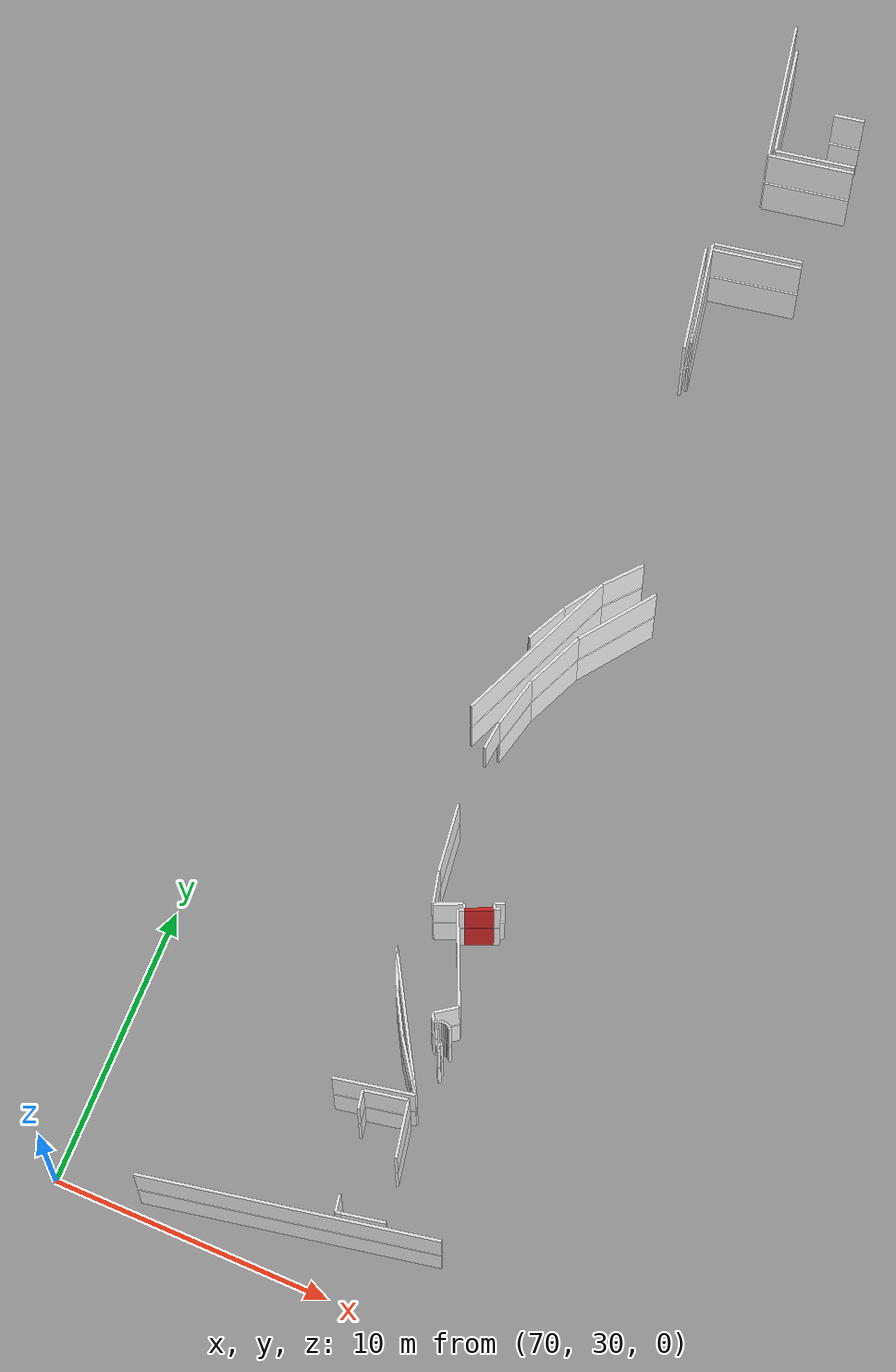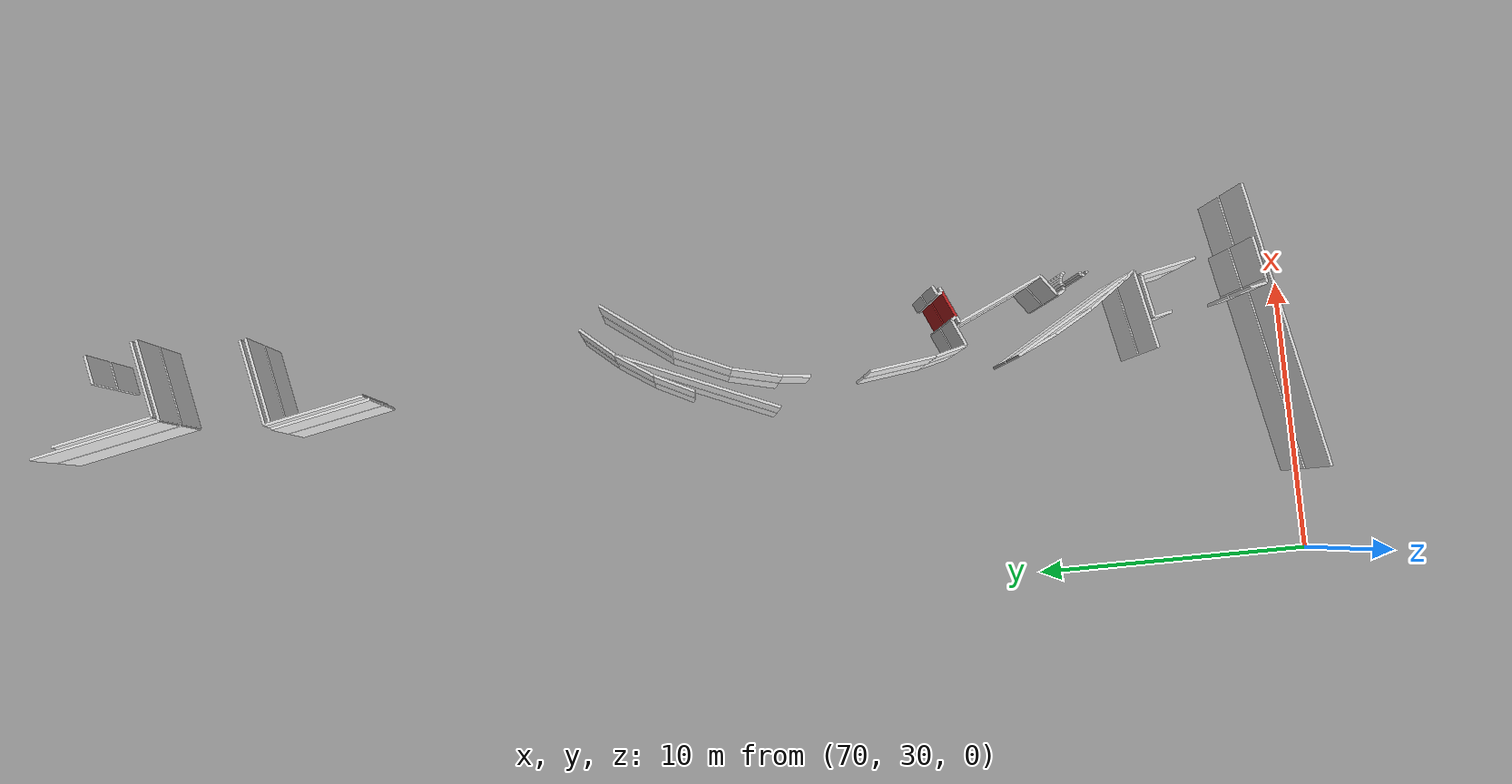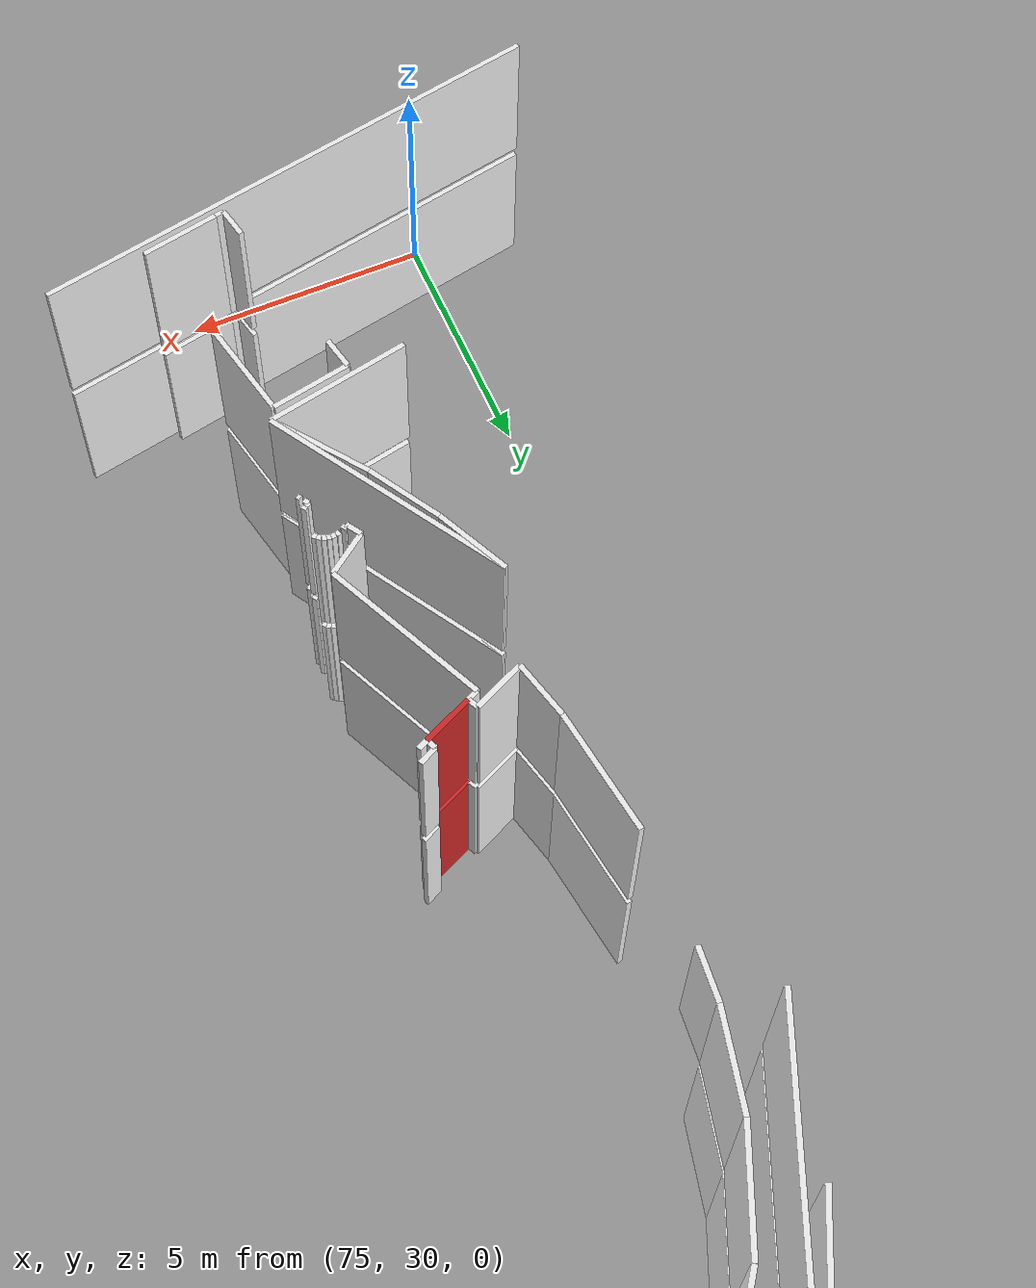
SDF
<sdf version="1.6">
 <world name="default">
  <model name="wall_79.8_43.2_0.0">
   <static>true</static>
   <pose>79.82500000001164 43.18500000005588 1.5 0 0 0.42331075582642225</pose>
   <link name="link">
    <visual name="visual">
     <geometry><box><size>0.9980981916532635 0.1 3</size></box></geometry>
     <material>
      <script><uri>file://media/materials/scripts/gazebo.material</uri><name>Gazebo/Red</name></script>
     </material>
    </visual>
   </link>
  </model>
  <model name="wall_80.4_73.3_0.0">
   <static>true</static>
   <pose>80.43499999999767 73.31000000005588 1.5 0 0 -2.949804511433895</pose>
   <link name="link">
    <visual name="visual">
     <geometry><box><size>1.049237818672231 0.1 3</size></box></geometry>
     <material>
      <script><uri>file://media/materials/scripts/gazebo.material</uri><name>Gazebo/White</name></script>
     </material>
    </visual>
   </link>
  </model>
  <model name="wall_78.2_73.0_0.0">
   <static>true</static>
   <pose>78.22500000000582 73.0250000001397 1.5 0 0 -1.374478352720188</pose>
   <link name="link">
    <visual name="visual">
     <geometry><box><size>3.6399175813241733 0.1 3</size></box></geometry>
     <material>
      <script><uri>file://media/materials/scripts/gazebo.material</uri><name>Gazebo/White</name></script>
     </material>
    </visual>
   </link>
  </model>
  <model name="wall_79.9_71.5_0.0">
   <static>true</static>
   <pose>79.93000000002212 71.50500000012107 1.5 0 0 0.19383178298877288</pose>
   <link name="link">
    <visual name="visual">
     <geometry><box><size>2.7515268488324223 0.1 3</size></box></geometry>
     <material>
      <script><uri>file://media/materials/scripts/gazebo.material</uri><name>Gazebo/White</name></script>
     </material>
    </visual>
   </link>
  </model>
  <model name="wall_79.5_67.5_0.0">
   <static>true</static>
   <pose>79.48500000001513 67.47999999998137 1.5 0 0 -2.9473516575252563</pose>
   <link name="link">
    <visual name="visual">
     <geometry><box><size>3.1084562083905816 0.1 3</size></box></geometry>
     <material>
      <script><uri>file://media/materials/scripts/gazebo.material</uri><name>Gazebo/White</name></script>
     </material>
    </visual>
   </link>
  </model>
  <model name="wall_78.3_65.5_0.0">
   <static>true</static>
   <pose>78.29000000000815 65.52000000001863 1.5 0 0 -1.3745595150025516</pose>
   <link name="link">
    <visual name="visual">
     <geometry><box><size>3.384966765264479 0.1 3</size></box></geometry>
     <material>
      <script><uri>file://media/materials/scripts/gazebo.material</uri><name>Gazebo/White</name></script>
     </material>
    </visual>
   </link>
  </model>
  <model name="wall_79.3_42.9_0.0">
   <static>true</static>
   <pose>79.26999999998952 42.93500000005588 1.5 0 0 0.4228539254915673</pose>
   <link name="link">
    <visual name="visual">
     <geometry><box><size>0.21931712194408015 0.1 3</size></box></geometry>
     <material>
      <script><uri>file://media/materials/scripts/gazebo.material</uri><name>Gazebo/White</name></script>
     </material>
    </visual>
   </link>
  </model>
  <model name="wall_80.4_43.4_0.0">
   <static>true</static>
   <pose>80.37000000002445 43.43000000016764 1.5 0 0 0.4182243299392765</pose>
   <link name="link">
    <visual name="visual">
     <geometry><box><size>0.19697715605979885 0.1 3</size></box></geometry>
     <material>
      <script><uri>file://media/materials/scripts/gazebo.material</uri><name>Gazebo/White</name></script>
     </material>
    </visual>
   </link>
  </model>
  <model name="wall_80.5_38.3_0.0">
   <static>true</static>
   <pose>80.5 38.28999999980442 1.5 0 0 2.158798930342464</pose>
   <link name="link">
    <visual name="visual">
     <geometry><box><size>0.0721110255764384 0.1 3</size></box></geometry>
     <material>
      <script><uri>file://media/materials/scripts/gazebo.material</uri><name>Gazebo/White</name></script>
     </material>
    </visual>
   </link>
  </model>
  <model name="wall_80.4_38.4_0.0">
   <static>true</static>
   <pose>80.41000000000349 38.419999999925494 1.5 0 0 2.2142974351225195</pose>
   <link name="link">
    <visual name="visual">
     <geometry><box><size>0.10000000005820765 0.1 3</size></box></geometry>
     <material>
      <script><uri>file://media/materials/scripts/gazebo.material</uri><name>Gazebo/White</name></script>
     </material>
    </visual>
   </link>
  </model>
  <model name="wall_80.4_38.5_0.0">
   <static>true</static>
   <pose>80.4200000000128 38.47999999998137 1.5 0 0 0.4636476092918444</pose>
   <link name="link">
    <visual name="visual">
     <geometry><box><size>0.0894427191312291 0.1 3</size></box></geometry>
     <material>
      <script><uri>file://media/materials/scripts/gazebo.material</uri><name>Gazebo/White</name></script>
     </material>
    </visual>
   </link>
  </model>
  <model name="wall_80.5_38.5_0.0">
   <static>true</static>
   <pose>80.49000000001979 38.52499999990687 1.5 0 0 0.6947382743836776</pose>
   <link name="link">
    <visual name="visual">
     <geometry><box><size>0.07810249663803426 0.1 3</size></box></geometry>
     <material>
      <script><uri>file://media/materials/scripts/gazebo.material</uri><name>Gazebo/White</name></script>
     </material>
    </visual>
   </link>
  </model>
  <model name="wall_80.5_39.1_0.0">
   <static>true</static>
   <pose>80.53500000000349 39.110000000102445 1.5 0 0 2.2655346024190655</pose>
   <link name="link">
    <visual name="visual">
     <geometry><box><size>0.07810249679454152 0.1 3</size></box></geometry>
     <material>
      <script><uri>file://media/materials/scripts/gazebo.material</uri><name>Gazebo/White</name></script>
     </material>
    </visual>
   </link>
  </model>
  <model name="wall_80.5_39.2_0.0">
   <static>true</static>
   <pose>80.47500000000582 39.16500000003725 1.5 0 0 2.521343169416129</pose>
   <link name="link">
    <visual name="visual">
     <geometry><box><size>0.08602325256784608 0.1 3</size></box></geometry>
     <material>
      <script><uri>file://media/materials/scripts/gazebo.material</uri><name>Gazebo/White</name></script>
     </material>
    </visual>
   </link>
  </model>
  <model name="wall_80.4_39.2_0.0">
   <static>true</static>
   <pose>80.39999999999418 39.205000000074506 1.5 0 0 2.7828219805284427</pose>
   <link name="link">
    <visual name="visual">
     <geometry><box><size>0.08544003755999831 0.1 3</size></box></geometry>
     <material>
      <script><uri>file://media/materials/scripts/gazebo.material</uri><name>Gazebo/White</name></script>
     </material>
    </visual>
   </link>
  </model>
  <model name="wall_80.3_39.2_0.0">
   <static>true</static>
   <pose>80.32000000000698 39.22500000009313 1.5 0 0 3.0172376617295393</pose>
   <link name="link">
    <visual name="visual">
     <geometry><box><size>0.08062257741367569 0.1 3</size></box></geometry>
     <material>
      <script><uri>file://media/materials/scripts/gazebo.material</uri><name>Gazebo/White</name></script>
     </material>
    </visual>
   </link>
  </model>
  <model name="wall_80.2_39.2_0.0">
   <static>true</static>
   <pose>80.23500000001513 39.22999999998137 1.5 0 0 3.141592653589793</pose>
   <link name="link">
    <visual name="visual">
     <geometry><box><size>0.09000000002561137 0.1 3</size></box></geometry>
     <material>
      <script><uri>file://media/materials/scripts/gazebo.material</uri><name>Gazebo/White</name></script>
     </material>
    </visual>
   </link>
  </model>
  <model name="wall_80.1_39.2_0.0">
   <static>true</static>
   <pose>80.14999999999418 39.21999999997206 1.5 0 0 -2.8966139902917303</pose>
   <link name="link">
    <visual name="visual">
     <geometry><box><size>0.08246211253268232 0.1 3</size></box></geometry>
     <material>
      <script><uri>file://media/materials/scripts/gazebo.material</uri><name>Gazebo/White</name></script>
     </material>
    </visual>
   </link>
  </model>
  <model name="wall_80.0_39.1_0.0">
   <static>true</static>
   <pose>80.00499999997555 39.14500000001863 1.5 0 0 -2.521343169416129</pose>
   <link name="link">
    <visual name="visual">
     <geometry><box><size>0.08602325256784608 0.1 3</size></box></geometry>
     <material>
      <script><uri>file://media/materials/scripts/gazebo.material</uri><name>Gazebo/White</name></script>
     </material>
    </visual>
   </link>
  </model>
  <model name="wall_79.9_39.2_0.0">
   <static>true</static>
   <pose>79.875 39.24499999987893 1.5 0 0 2.1327178891317615</pose>
   <link name="link">
    <visual name="visual">
     <geometry><box><size>0.3190611227089686 0.1 3</size></box></geometry>
     <material>
      <script><uri>file://media/materials/scripts/gazebo.material</uri><name>Gazebo/White</name></script>
     </material>
    </visual>
   </link>
  </model>
  <model name="wall_80.2_39.6_0.0">
   <static>true</static>
   <pose>80.15499999999884 39.64500000001863 1.5 0 0 0.6279812908789976</pose>
   <link name="link">
    <visual name="visual">
     <geometry><box><size>0.9021086410927485 0.1 3</size></box></geometry>
     <material>
      <script><uri>file://media/materials/scripts/gazebo.material</uri><name>Gazebo/White</name></script>
     </material>
    </visual>
   </link>
  </model>
  <model name="wall_79.8_41.4_0.0">
   <static>true</static>
   <pose>79.84500000000116 41.4000000001397 1.5 0 0 1.9961589584783586</pose>
   <link name="link">
    <visual name="visual">
     <geometry><box><size>3.2715286946599265 0.1 3</size></box></geometry>
     <material>
      <script><uri>file://media/materials/scripts/gazebo.material</uri><name>Gazebo/White</name></script>
     </material>
    </visual>
   </link>
  </model>
  <model name="wall_78.1_50.1_0.0">
   <static>true</static>
   <pose>78.11000000001513 50.10499999998137 1.5 0 0 1.3352513460828392</pose>
   <link name="link">
    <visual name="visual">
     <geometry><box><size>1.7996944185017383 0.1 3</size></box></geometry>
     <material>
      <script><uri>file://media/materials/scripts/gazebo.material</uri><name>Gazebo/White</name></script>
     </material>
    </visual>
   </link>
  </model>
  <model name="wall_78.8_52.0_0.0">
   <static>true</static>
   <pose>78.75 51.96500000008382 1.5 0 0 1.1591850326473987</pose>
   <link name="link">
    <visual name="visual">
     <geometry><box><size>2.1495348335821967 0.1 3</size></box></geometry>
     <material>
      <script><uri>file://media/materials/scripts/gazebo.material</uri><name>Gazebo/White</name></script>
     </material>
    </visual>
   </link>
  </model>
  <model name="wall_80.1_54.2_0.0">
   <static>true</static>
   <pose>80.07499999998254 54.16500000003725 1.5 0 0 0.9359099816356786</pose>
   <link name="link">
    <visual name="visual">
     <geometry><box><size>3.018111992368174 0.1 3</size></box></geometry>
     <material>
      <script><uri>file://media/materials/scripts/gazebo.material</uri><name>Gazebo/White</name></script>
     </material>
    </visual>
   </link>
  </model>
  <model name="wall_80.4_43.6_0.0">
   <static>true</static>
   <pose>80.36500000001979 43.640000000130385 1.5 0 0 -2.6901395616910224</pose>
   <link name="link">
    <visual name="visual">
     <geometry><box><size>0.3667424164975201 0.1 3</size></box></geometry>
     <material>
      <script><uri>file://media/materials/scripts/gazebo.material</uri><name>Gazebo/White</name></script>
     </material>
    </visual>
   </link>
  </model>
  <model name="wall_80.2_43.5_0.0">
   <static>true</static>
   <pose>80.24000000001979 43.47500000009313 1.5 0 0 -1.1309537437318191</pose>
   <link name="link">
    <visual name="visual">
     <geometry><box><size>0.1878829422200848 0.1 3</size></box></geometry>
     <material>
      <script><uri>file://media/materials/scripts/gazebo.material</uri><name>Gazebo/White</name></script>
     </material>
    </visual>
   </link>
  </model>
  <model name="wall_79.3_43.1_0.0">
   <static>true</static>
   <pose>79.32500000001164 43.07000000006519 1.5 0 0 2.0344439352783015</pose>
   <link name="link">
    <visual name="visual">
     <geometry><box><size>0.20124611811034362 0.1 3</size></box></geometry>
     <material>
      <script><uri>file://media/materials/scripts/gazebo.material</uri><name>Gazebo/White</name></script>
     </material>
    </visual>
   </link>
  </model>
  <model name="wall_78.8_43.0_0.0">
   <static>true</static>
   <pose>78.81000000002678 42.950000000186265 1.5 0 0 -2.7213959400475116</pose>
   <link name="link">
    <visual name="visual">
     <geometry><box><size>1.029563014070432 0.1 3</size></box></geometry>
     <material>
      <script><uri>file://media/materials/scripts/gazebo.material</uri><name>Gazebo/White</name></script>
     </material>
    </visual>
   </link>
  </model>
  <model name="wall_78.2_43.3_0.0">
   <static>true</static>
   <pose>78.2050000000163 43.28500000014901 1.5 0 0 1.8136151661143607</pose>
   <link name="link">
    <visual name="visual">
     <geometry><box><size>1.1229425629502219 0.1 3</size></box></geometry>
     <material>
      <script><uri>file://media/materials/scripts/gazebo.material</uri><name>Gazebo/White</name></script>
     </material>
    </visual>
   </link>
  </model>
  <model name="wall_77.9_45.0_0.0">
   <static>true</static>
   <pose>77.91500000000815 45.0 1.5 0 0 1.7025079936748562</pose>
   <link name="link">
    <visual name="visual">
     <geometry><box><size>2.360444873175644 0.1 3</size></box></geometry>
     <material>
      <script><uri>file://media/materials/scripts/gazebo.material</uri><name>Gazebo/White</name></script>
     </material>
    </visual>
   </link>
  </model>
  <model name="wall_78.0_73.3_0.0">
   <static>true</static>
   <pose>77.97000000000116 73.29999999981374 1.5 0 0 1.769031517003461</pose>
   <link name="link">
    <visual name="visual">
     <geometry><box><size>4.6714879857120994 0.1 3</size></box></geometry>
     <material>
      <script><uri>file://media/materials/scripts/gazebo.material</uri><name>Gazebo/White</name></script>
     </material>
    </visual>
   </link>
  </model>
  <model name="wall_79.4_67.7_0.0">
   <static>true</static>
   <pose>79.44000000000233 67.67999999993481 1.5 0 0 -2.946728733873762</pose>
   <link name="link">
    <visual name="visual">
     <geometry><box><size>3.0986448651528713 0.1 3</size></box></geometry>
     <material>
      <script><uri>file://media/materials/scripts/gazebo.material</uri><name>Gazebo/White</name></script>
     </material>
    </visual>
   </link>
  </model>
  <model name="wall_79.9_71.3_0.0">
   <static>true</static>
   <pose>79.875 71.2949999999255 1.5 0 0 0.1947324503984289</pose>
   <link name="link">
    <visual name="visual">
     <geometry><box><size>2.9456747954281193 0.1 3</size></box></geometry>
     <material>
      <script><uri>file://media/materials/scripts/gazebo.material</uri><name>Gazebo/White</name></script>
     </material>
    </visual>
   </link>
  </model>
  <model name="wall_79.6_32.1_0.0">
   <static>true</static>
   <pose>79.61500000001979 32.05499999993481 1.5 0 0 -2.966920455733987</pose>
   <link name="link">
    <visual name="visual">
     <geometry><box><size>0.1726267649646635 0.1 3</size></box></geometry>
     <material>
      <script><uri>file://media/materials/scripts/gazebo.material</uri><name>Gazebo/White</name></script>
     </material>
    </visual>
   </link>
  </model>
  <model name="wall_79.5_32.3_0.0">
   <static>true</static>
   <pose>79.47000000000116 32.34000000008382 1.5 0 0 1.7681918867007462</pose>
   <link name="link">
    <visual name="visual">
     <geometry><box><size>0.6118823417329601 0.1 3</size></box></geometry>
     <material>
      <script><uri>file://media/materials/scripts/gazebo.material</uri><name>Gazebo/White</name></script>
     </material>
    </visual>
   </link>
  </model>
  <model name="wall_78.8_35.8_0.0">
   <static>true</static>
   <pose>78.77500000002328 35.78500000014901 1.5 0 0 1.7742893720946593</pose>
   <link name="link">
    <visual name="visual">
     <geometry><box><size>0.6432728813345039 0.1 3</size></box></geometry>
     <material>
      <script><uri>file://media/materials/scripts/gazebo.material</uri><name>Gazebo/White</name></script>
     </material>
    </visual>
   </link>
  </model>
  <model name="wall_79.5_36.2_0.0">
   <static>true</static>
   <pose>79.47000000000116 36.25 1.5 0 0 0.194863919575871</pose>
   <link name="link">
    <visual name="visual">
     <geometry><box><size>1.549322432474246 0.1 3</size></box></geometry>
     <material>
      <script><uri>file://media/materials/scripts/gazebo.material</uri><name>Gazebo/White</name></script>
     </material>
    </visual>
   </link>
  </model>
  <model name="wall_80.4_35.4_0.0">
   <static>true</static>
   <pose>80.42999999999302 35.425000000046566 1.5 0 0 -1.368474698376931</pose>
   <link name="link">
    <visual name="visual">
     <geometry><box><size>1.9906029234704192 0.1 3</size></box></geometry>
     <material>
      <script><uri>file://media/materials/scripts/gazebo.material</uri><name>Gazebo/White</name></script>
     </material>
    </visual>
   </link>
  </model>
  <model name="wall_80.4_32.2_0.0">
   <static>true</static>
   <pose>80.44500000000698 32.21999999997206 1.5 0 0 -2.942906771693948</pose>
   <link name="link">
    <visual name="visual">
     <geometry><box><size>1.5199013126318053 0.1 3</size></box></geometry>
     <material>
      <script><uri>file://media/materials/scripts/gazebo.material</uri><name>Gazebo/White</name></script>
     </material>
    </visual>
   </link>
  </model>
  <model name="wall_78.1_65.4_0.0">
   <static>true</static>
   <pose>78.11999999999534 65.38500000000931 1.5 0 0 -1.3739487121216474</pose>
   <link name="link">
    <visual name="visual">
     <geometry><box><size>3.5791200038046584 0.1 3</size></box></geometry>
     <material>
      <script><uri>file://media/materials/scripts/gazebo.material</uri><name>Gazebo/White</name></script>
     </material>
    </visual>
   </link>
  </model>
  <model name="wall_79.7_55.6_0.0">
   <static>true</static>
   <pose>79.69000000000233 55.57000000006519 1.5 0 0 -2.282255452669402</pose>
   <link name="link">
    <visual name="visual">
     <geometry><box><size>1.5315351772862982 0.1 3</size></box></geometry>
     <material>
      <script><uri>file://media/materials/scripts/gazebo.material</uri><name>Gazebo/White</name></script>
     </material>
    </visual>
   </link>
  </model>
  <model name="wall_78.8_54.4_0.0">
   <static>true</static>
   <pose>78.76500000001397 54.35000000009313 1.5 0 0 -2.1569938780447484</pose>
   <link name="link">
    <visual name="visual">
     <geometry><box><size>1.5365220469059306 0.1 3</size></box></geometry>
     <material>
      <script><uri>file://media/materials/scripts/gazebo.material</uri><name>Gazebo/White</name></script>
     </material>
    </visual>
   </link>
  </model>
  <model name="wall_78.0_53.0_0.0">
   <static>true</static>
   <pose>78.0 53.02000000001863 1.5 0 0 -2.0286300478758363</pose>
   <link name="link">
    <visual name="visual">
     <geometry><box><size>1.538440769012967 0.1 3</size></box></geometry>
     <material>
      <script><uri>file://media/materials/scripts/gazebo.material</uri><name>Gazebo/White</name></script>
     </material>
    </visual>
   </link>
  </model>
  <model name="wall_78.1_40.3_0.0">
   <static>true</static>
   <pose>78.11499999999069 40.27499999990687 1.5 0 0 -1.1397780825490453</pose>
   <link name="link">
    <visual name="visual">
     <geometry><box><size>1.507912464406368 0.1 3</size></box></geometry>
     <material>
      <script><uri>file://media/materials/scripts/gazebo.material</uri><name>Gazebo/White</name></script>
     </material>
    </visual>
   </link>
  </model>
  <model name="wall_78.8_38.9_0.0">
   <static>true</static>
   <pose>78.80999999999767 38.92999999993481 1.5 0 0 -1.048392895018153</pose>
   <link name="link">
    <visual name="visual">
     <geometry><box><size>1.5231546210321498 0.1 3</size></box></geometry>
     <material>
      <script><uri>file://media/materials/scripts/gazebo.material</uri><name>Gazebo/White</name></script>
     </material>
    </visual>
   </link>
  </model>
  <model name="wall_79.6_37.7_0.0">
   <static>true</static>
   <pose>79.63000000000466 37.65500000002794 1.5 0 0 -0.9497782014457066</pose>
   <link name="link">
    <visual name="visual">
     <geometry><box><size>1.5123822268072231 0.1 3</size></box></geometry>
     <material>
      <script><uri>file://media/materials/scripts/gazebo.material</uri><name>Gazebo/White</name></script>
     </material>
    </visual>
   </link>
  </model>
  <model name="wall_80.2_36.8_0.0">
   <static>true</static>
   <pose>80.22500000000582 36.84000000008382 1.5 0 0 -0.911486258352942</pose>
   <link name="link">
    <visual name="visual">
     <geometry><box><size>0.5060632370801604 0.1 3</size></box></geometry>
     <material>
      <script><uri>file://media/materials/scripts/gazebo.material</uri><name>Gazebo/White</name></script>
     </material>
    </visual>
   </link>
  </model>
  <model name="wall_79.0_36.4_0.0">
   <static>true</static>
   <pose>79.0 36.360000000102445 1.5 0 0 -2.9414115856051164</pose>
   <link name="link">
    <visual name="visual">
     <geometry><box><size>2.816238626273348 0.1 3</size></box></geometry>
     <material>
      <script><uri>file://media/materials/scripts/gazebo.material</uri><name>Gazebo/White</name></script>
     </material>
    </visual>
   </link>
  </model>
  <model name="wall_78.0_31.5_0.0">
   <static>true</static>
   <pose>78.02499999999418 31.540000000037253 1.5 0 0 0.19417892004540582</pose>
   <link name="link">
    <visual name="visual">
     <geometry><box><size>10.364791363055433 0.1 3</size></box></geometry>
     <material>
      <script><uri>file://media/materials/scripts/gazebo.material</uri><name>Gazebo/White</name></script>
     </material>
    </visual>
   </link>
  </model>
  <model name="wall_79.1_38.8_0.0">
   <static>true</static>
   <pose>79.08999999999651 38.800000000046566 1.5 0 0 2.10917084016099</pose>
   <link name="link">
    <visual name="visual">
     <geometry><box><size>5.031779009320233 0.1 3</size></box></geometry>
     <material>
      <script><uri>file://media/materials/scripts/gazebo.material</uri><name>Gazebo/White</name></script>
     </material>
    </visual>
   </link>
  </model>
  <model name="wall_78.0_52.2_0.0">
   <static>true</static>
   <pose>78.00500000000466 52.19000000017695 1.5 0 0 1.1704391671759413</pose>
   <link name="link">
    <visual name="visual">
     <geometry><box><size>6.080863425618191 0.1 3</size></box></geometry>
     <material>
      <script><uri>file://media/materials/scripts/gazebo.material</uri><name>Gazebo/White</name></script>
     </material>
    </visual>
   </link>
  </model>
  <model name="wall_78.3_65.6_0.0">
   <static>true</static>
   <pose>78.26999999998952 65.61999999987893 1.5 0 0 1.7670989909072092</pose>
   <link name="link">
    <visual name="visual">
     <geometry><box><size>3.5889274163944065 0.1 3</size></box></geometry>
     <material>
      <script><uri>file://media/materials/scripts/gazebo.material</uri><name>Gazebo/White</name></script>
     </material>
    </visual>
   </link>
  </model>
  <model name="wall_79.8_43.2_3.2">
   <static>true</static>
   <pose>79.82500000001164 43.18500000005588 4.7 0 0 0.42331075582642225</pose>
   <link name="link">
    <visual name="visual">
     <geometry><box><size>0.9980981916532635 0.1 3</size></box></geometry>
     <material>
      <script><uri>file://media/materials/scripts/gazebo.material</uri><name>Gazebo/Red</name></script>
     </material>
    </visual>
   </link>
  </model>
  <model name="wall_80.4_73.3_3.2">
   <static>true</static>
   <pose>80.43499999999767 73.31000000005588 4.7 0 0 -2.949804511433895</pose>
   <link name="link">
    <visual name="visual">
     <geometry><box><size>1.049237818672231 0.1 3</size></box></geometry>
     <material>
      <script><uri>file://media/materials/scripts/gazebo.material</uri><name>Gazebo/White</name></script>
     </material>
    </visual>
   </link>
  </model>
  <model name="wall_78.2_73.0_3.2">
   <static>true</static>
   <pose>78.22500000000582 73.0250000001397 4.7 0 0 -1.374478352720188</pose>
   <link name="link">
    <visual name="visual">
     <geometry><box><size>3.6399175813241733 0.1 3</size></box></geometry>
     <material>
      <script><uri>file://media/materials/scripts/gazebo.material</uri><name>Gazebo/White</name></script>
     </material>
    </visual>
   </link>
  </model>
  <model name="wall_79.9_71.5_3.2">
   <static>true</static>
   <pose>79.93000000002212 71.50500000012107 4.7 0 0 0.19383178298877288</pose>
   <link name="link">
    <visual name="visual">
     <geometry><box><size>2.7515268488324223 0.1 3</size></box></geometry>
     <material>
      <script><uri>file://media/materials/scripts/gazebo.material</uri><name>Gazebo/White</name></script>
     </material>
    </visual>
   </link>
  </model>
  <model name="wall_79.5_67.5_3.2">
   <static>true</static>
   <pose>79.48500000001513 67.47999999998137 4.7 0 0 -2.9473516575252563</pose>
   <link name="link">
    <visual name="visual">
     <geometry><box><size>3.1084562083905816 0.1 3</size></box></geometry>
     <material>
      <script><uri>file://media/materials/scripts/gazebo.material</uri><name>Gazebo/White</name></script>
     </material>
    </visual>
   </link>
  </model>
  <model name="wall_78.3_65.5_3.2">
   <static>true</static>
   <pose>78.29000000000815 65.52000000001863 4.7 0 0 -1.3745595150025516</pose>
   <link name="link">
    <visual name="visual">
     <geometry><box><size>3.384966765264479 0.1 3</size></box></geometry>
     <material>
      <script><uri>file://media/materials/scripts/gazebo.material</uri><name>Gazebo/White</name></script>
     </material>
    </visual>
   </link>
  </model>
  <model name="wall_79.3_42.9_3.2">
   <static>true</static>
   <pose>79.26999999998952 42.93500000005588 4.7 0 0 0.4228539254915673</pose>
   <link name="link">
    <visual name="visual">
     <geometry><box><size>0.21931712194408015 0.1 3</size></box></geometry>
     <material>
      <script><uri>file://media/materials/scripts/gazebo.material</uri><name>Gazebo/White</name></script>
     </material>
    </visual>
   </link>
  </model>
  <model name="wall_80.4_43.4_3.2">
   <static>true</static>
   <pose>80.37000000002445 43.43000000016764 4.7 0 0 0.4182243299392765</pose>
   <link name="link">
    <visual name="visual">
     <geometry><box><size>0.19697715605979885 0.1 3</size></box></geometry>
     <material>
      <script><uri>file://media/materials/scripts/gazebo.material</uri><name>Gazebo/White</name></script>
     </material>
    </visual>
   </link>
  </model>
  <model name="wall_80.5_38.3_3.2">
   <static>true</static>
   <pose>80.5 38.28999999980442 4.7 0 0 2.158798930342464</pose>
   <link name="link">
    <visual name="visual">
     <geometry><box><size>0.0721110255764384 0.1 3</size></box></geometry>
     <material>
      <script><uri>file://media/materials/scripts/gazebo.material</uri><name>Gazebo/White</name></script>
     </material>
    </visual>
   </link>
  </model>
  <model name="wall_80.4_38.4_3.2">
   <static>true</static>
   <pose>80.41000000000349 38.419999999925494 4.7 0 0 2.2142974351225195</pose>
   <link name="link">
    <visual name="visual">
     <geometry><box><size>0.10000000005820765 0.1 3</size></box></geometry>
     <material>
      <script><uri>file://media/materials/scripts/gazebo.material</uri><name>Gazebo/White</name></script>
     </material>
    </visual>
   </link>
  </model>
  <model name="wall_80.4_38.5_3.2">
   <static>true</static>
   <pose>80.4200000000128 38.47999999998137 4.7 0 0 0.4636476092918444</pose>
   <link name="link">
    <visual name="visual">
     <geometry><box><size>0.0894427191312291 0.1 3</size></box></geometry>
     <material>
      <script><uri>file://media/materials/scripts/gazebo.material</uri><name>Gazebo/White</name></script>
     </material>
    </visual>
   </link>
  </model>
  <model name="wall_80.5_38.5_3.2">
   <static>true</static>
   <pose>80.49000000001979 38.52499999990687 4.7 0 0 0.6947382743836776</pose>
   <link name="link">
    <visual name="visual">
     <geometry><box><size>0.07810249663803426 0.1 3</size></box></geometry>
     <material>
      <script><uri>file://media/materials/scripts/gazebo.material</uri><name>Gazebo/White</name></script>
     </material>
    </visual>
   </link>
  </model>
  <model name="wall_80.5_39.1_3.2">
   <static>true</static>
   <pose>80.53500000000349 39.110000000102445 4.7 0 0 2.2655346024190655</pose>
   <link name="link">
    <visual name="visual">
     <geometry><box><size>0.07810249679454152 0.1 3</size></box></geometry>
     <material>
      <script><uri>file://media/materials/scripts/gazebo.material</uri><name>Gazebo/White</name></script>
     </material>
    </visual>
   </link>
  </model>
  <model name="wall_80.5_39.2_3.2">
   <static>true</static>
   <pose>80.47500000000582 39.16500000003725 4.7 0 0 2.521343169416129</pose>
   <link name="link">
    <visual name="visual">
     <geometry><box><size>0.08602325256784608 0.1 3</size></box></geometry>
     <material>
      <script><uri>file://media/materials/scripts/gazebo.material</uri><name>Gazebo/White</name></script>
     </material>
    </visual>
   </link>
  </model>
  <model name="wall_80.4_39.2_3.2">
   <static>true</static>
   <pose>80.39999999999418 39.205000000074506 4.7 0 0 2.7828219805284427</pose>
   <link name="link">
    <visual name="visual">
     <geometry><box><size>0.08544003755999831 0.1 3</size></box></geometry>
     <material>
      <script><uri>file://media/materials/scripts/gazebo.material</uri><name>Gazebo/White</name></script>
     </material>
    </visual>
   </link>
  </model>
  <model name="wall_80.3_39.2_3.2">
   <static>true</static>
   <pose>80.32000000000698 39.22500000009313 4.7 0 0 3.0172376617295393</pose>
   <link name="link">
    <visual name="visual">
     <geometry><box><size>0.08062257741367569 0.1 3</size></box></geometry>
     <material>
      <script><uri>file://media/materials/scripts/gazebo.material</uri><name>Gazebo/White</name></script>
     </material>
    </visual>
   </link>
  </model>
  <model name="wall_80.2_39.2_3.2">
   <static>true</static>
   <pose>80.23500000001513 39.22999999998137 4.7 0 0 3.141592653589793</pose>
   <link name="link">
    <visual name="visual">
     <geometry><box><size>0.09000000002561137 0.1 3</size></box></geometry>
     <material>
      <script><uri>file://media/materials/scripts/gazebo.material</uri><name>Gazebo/White</name></script>
     </material>
    </visual>
   </link>
  </model>
  <model name="wall_80.1_39.2_3.2">
   <static>true</static>
   <pose>80.14999999999418 39.21999999997206 4.7 0 0 -2.8966139902917303</pose>
   <link name="link">
    <visual name="visual">
     <geometry><box><size>0.08246211253268232 0.1 3</size></box></geometry>
     <material>
      <script><uri>file://media/materials/scripts/gazebo.material</uri><name>Gazebo/White</name></script>
     </material>
    </visual>
   </link>
  </model>
  <model name="wall_80.0_39.1_3.2">
   <static>true</static>
   <pose>80.00499999997555 39.14500000001863 4.7 0 0 -2.521343169416129</pose>
   <link name="link">
    <visual name="visual">
     <geometry><box><size>0.08602325256784608 0.1 3</size></box></geometry>
     <material>
      <script><uri>file://media/materials/scripts/gazebo.material</uri><name>Gazebo/White</name></script>
     </material>
    </visual>
   </link>
  </model>
  <model name="wall_79.9_39.2_3.2">
   <static>true</static>
   <pose>79.875 39.24499999987893 4.7 0 0 2.1327178891317615</pose>
   <link name="link">
    <visual name="visual">
     <geometry><box><size>0.3190611227089686 0.1 3</size></box></geometry>
     <material>
      <script><uri>file://media/materials/scripts/gazebo.material</uri><name>Gazebo/White</name></script>
     </material>
    </visual>
   </link>
  </model>
  <model name="wall_80.2_39.6_3.2">
   <static>true</static>
   <pose>80.15499999999884 39.64500000001863 4.7 0 0 0.6279812908789976</pose>
   <link name="link">
    <visual name="visual">
     <geometry><box><size>0.9021086410927485 0.1 3</size></box></geometry>
     <material>
      <script><uri>file://media/materials/scripts/gazebo.material</uri><name>Gazebo/White</name></script>
     </material>
    </visual>
   </link>
  </model>
  <model name="wall_79.8_41.4_3.2">
   <static>true</static>
   <pose>79.84500000000116 41.4000000001397 4.7 0 0 1.9961589584783586</pose>
   <link name="link">
    <visual name="visual">
     <geometry><box><size>3.2715286946599265 0.1 3</size></box></geometry>
     <material>
      <script><uri>file://media/materials/scripts/gazebo.material</uri><name>Gazebo/White</name></script>
     </material>
    </visual>
   </link>
  </model>
  <model name="wall_78.1_50.1_3.2">
   <static>true</static>
   <pose>78.11000000001513 50.10499999998137 4.7 0 0 1.3352513460828392</pose>
   <link name="link">
    <visual name="visual">
     <geometry><box><size>1.7996944185017383 0.1 3</size></box></geometry>
     <material>
      <script><uri>file://media/materials/scripts/gazebo.material</uri><name>Gazebo/White</name></script>
     </material>
    </visual>
   </link>
  </model>
  <model name="wall_78.8_52.0_3.2">
   <static>true</static>
   <pose>78.75 51.96500000008382 4.7 0 0 1.1591850326473987</pose>
   <link name="link">
    <visual name="visual">
     <geometry><box><size>2.1495348335821967 0.1 3</size></box></geometry>
     <material>
      <script><uri>file://media/materials/scripts/gazebo.material</uri><name>Gazebo/White</name></script>
     </material>
    </visual>
   </link>
  </model>
  <model name="wall_80.1_54.2_3.2">
   <static>true</static>
   <pose>80.07499999998254 54.16500000003725 4.7 0 0 0.9359099816356786</pose>
   <link name="link">
    <visual name="visual">
     <geometry><box><size>3.018111992368174 0.1 3</size></box></geometry>
     <material>
      <script><uri>file://media/materials/scripts/gazebo.material</uri><name>Gazebo/White</name></script>
     </material>
    </visual>
   </link>
  </model>
  <model name="wall_80.4_43.6_3.2">
   <static>true</static>
   <pose>80.36500000001979 43.640000000130385 4.7 0 0 -2.6901395616910224</pose>
   <link name="link">
    <visual name="visual">
     <geometry><box><size>0.3667424164975201 0.1 3</size></box></geometry>
     <material>
      <script><uri>file://media/materials/scripts/gazebo.material</uri><name>Gazebo/White</name></script>
     </material>
    </visual>
   </link>
  </model>
  <model name="wall_80.2_43.5_3.2">
   <static>true</static>
   <pose>80.24000000001979 43.47500000009313 4.7 0 0 -1.1309537437318191</pose>
   <link name="link">
    <visual name="visual">
     <geometry><box><size>0.1878829422200848 0.1 3</size></box></geometry>
     <material>
      <script><uri>file://media/materials/scripts/gazebo.material</uri><name>Gazebo/White</name></script>
     </material>
    </visual>
   </link>
  </model>
  <model name="wall_79.3_43.1_3.2">
   <static>true</static>
   <pose>79.32500000001164 43.07000000006519 4.7 0 0 2.0344439352783015</pose>
   <link name="link">
    <visual name="visual">
     <geometry><box><size>0.20124611811034362 0.1 3</size></box></geometry>
     <material>
      <script><uri>file://media/materials/scripts/gazebo.material</uri><name>Gazebo/White</name></script>
     </material>
    </visual>
   </link>
  </model>
  <model name="wall_78.8_43.0_3.2">
   <static>true</static>
   <pose>78.81000000002678 42.950000000186265 4.7 0 0 -2.7213959400475116</pose>
   <link name="link">
    <visual name="visual">
     <geometry><box><size>1.029563014070432 0.1 3</size></box></geometry>
     <material>
      <script><uri>file://media/materials/scripts/gazebo.material</uri><name>Gazebo/White</name></script>
     </material>
    </visual>
   </link>
  </model>
  <model name="wall_78.2_43.3_3.2">
   <static>true</static>
   <pose>78.2050000000163 43.28500000014901 4.7 0 0 1.8136151661143607</pose>
   <link name="link">
    <visual name="visual">
     <geometry><box><size>1.1229425629502219 0.1 3</size></box></geometry>
     <material>
      <script><uri>file://media/materials/scripts/gazebo.material</uri><name>Gazebo/White</name></script>
     </material>
    </visual>
   </link>
  </model>
  <model name="wall_77.9_45.0_3.2">
   <static>true</static>
   <pose>77.91500000000815 45.0 4.7 0 0 1.7025079936748562</pose>
   <link name="link">
    <visual name="visual">
     <geometry><box><size>2.360444873175644 0.1 3</size></box></geometry>
     <material>
      <script><uri>file://media/materials/scripts/gazebo.material</uri><name>Gazebo/White</name></script>
     </material>
    </visual>
   </link>
  </model>
  <model name="wall_77.9_48.7_3.2">
   <static>true</static>
   <pose>77.85000000000582 48.74499999987893 4.7 0 0 1.4680664593621482</pose>
   <link name="link">
    <visual name="visual">
     <geometry><box><size>0.9751410156507998 0.1 3</size></box></geometry>
     <material>
      <script><uri>file://media/materials/scripts/gazebo.material</uri><name>Gazebo/White</name></script>
     </material>
    </visual>
   </link>
  </model>
  <model name="wall_78.0_73.3_3.2">
   <static>true</static>
   <pose>77.97000000000116 73.29999999981374 4.7 0 0 1.769031517003461</pose>
   <link name="link">
    <visual name="visual">
     <geometry><box><size>4.6714879857120994 0.1 3</size></box></geometry>
     <material>
      <script><uri>file://media/materials/scripts/gazebo.material</uri><name>Gazebo/White</name></script>
     </material>
    </visual>
   </link>
  </model>
  <model name="wall_79.4_67.7_3.2">
   <static>true</static>
   <pose>79.44000000000233 67.67999999993481 4.7 0 0 -2.946728733873762</pose>
   <link name="link">
    <visual name="visual">
     <geometry><box><size>3.0986448651528713 0.1 3</size></box></geometry>
     <material>
      <script><uri>file://media/materials/scripts/gazebo.material</uri><name>Gazebo/White</name></script>
     </material>
    </visual>
   </link>
  </model>
  <model name="wall_79.9_71.3_3.2">
   <static>true</static>
   <pose>79.875 71.2949999999255 4.7 0 0 0.1947324503984289</pose>
   <link name="link">
    <visual name="visual">
     <geometry><box><size>2.9456747954281193 0.1 3</size></box></geometry>
     <material>
      <script><uri>file://media/materials/scripts/gazebo.material</uri><name>Gazebo/White</name></script>
     </material>
    </visual>
   </link>
  </model>
  <model name="wall_79.6_32.1_3.2">
   <static>true</static>
   <pose>79.61500000001979 32.05499999993481 4.7 0 0 -2.966920455733987</pose>
   <link name="link">
    <visual name="visual">
     <geometry><box><size>0.1726267649646635 0.1 3</size></box></geometry>
     <material>
      <script><uri>file://media/materials/scripts/gazebo.material</uri><name>Gazebo/White</name></script>
     </material>
    </visual>
   </link>
  </model>
  <model name="wall_79.5_32.3_3.2">
   <static>true</static>
   <pose>79.47000000000116 32.34000000008382 4.7 0 0 1.7681918867007462</pose>
   <link name="link">
    <visual name="visual">
     <geometry><box><size>0.6118823417329601 0.1 3</size></box></geometry>
     <material>
      <script><uri>file://media/materials/scripts/gazebo.material</uri><name>Gazebo/White</name></script>
     </material>
    </visual>
   </link>
  </model>
  <model name="wall_78.8_35.8_3.2">
   <static>true</static>
   <pose>78.77500000002328 35.78500000014901 4.7 0 0 1.7742893720946593</pose>
   <link name="link">
    <visual name="visual">
     <geometry><box><size>0.6432728813345039 0.1 3</size></box></geometry>
     <material>
      <script><uri>file://media/materials/scripts/gazebo.material</uri><name>Gazebo/White</name></script>
     </material>
    </visual>
   </link>
  </model>
  <model name="wall_79.5_36.2_3.2">
   <static>true</static>
   <pose>79.47000000000116 36.25 4.7 0 0 0.194863919575871</pose>
   <link name="link">
    <visual name="visual">
     <geometry><box><size>1.549322432474246 0.1 3</size></box></geometry>
     <material>
      <script><uri>file://media/materials/scripts/gazebo.material</uri><name>Gazebo/White</name></script>
     </material>
    </visual>
   </link>
  </model>
  <model name="wall_80.4_35.4_3.2">
   <static>true</static>
   <pose>80.42999999999302 35.425000000046566 4.7 0 0 -1.368474698376931</pose>
   <link name="link">
    <visual name="visual">
     <geometry><box><size>1.9906029234704192 0.1 3</size></box></geometry>
     <material>
      <script><uri>file://media/materials/scripts/gazebo.material</uri><name>Gazebo/White</name></script>
     </material>
    </visual>
   </link>
  </model>
  <model name="wall_80.4_32.2_3.2">
   <static>true</static>
   <pose>80.44500000000698 32.21999999997206 4.7 0 0 -2.942906771693948</pose>
   <link name="link">
    <visual name="visual">
     <geometry><box><size>1.5199013126318053 0.1 3</size></box></geometry>
     <material>
      <script><uri>file://media/materials/scripts/gazebo.material</uri><name>Gazebo/White</name></script>
     </material>
    </visual>
   </link>
  </model>
  <model name="wall_78.1_65.4_3.2">
   <static>true</static>
   <pose>78.11999999999534 65.38500000000931 4.7 0 0 -1.3739487121216474</pose>
   <link name="link">
    <visual name="visual">
     <geometry><box><size>3.5791200038046584 0.1 3</size></box></geometry>
     <material>
      <script><uri>file://media/materials/scripts/gazebo.material</uri><name>Gazebo/White</name></script>
     </material>
    </visual>
   </link>
  </model>
  <model name="wall_79.7_55.6_3.2">
   <static>true</static>
   <pose>79.69000000000233 55.57000000006519 4.7 0 0 -2.282255452669402</pose>
   <link name="link">
    <visual name="visual">
     <geometry><box><size>1.5315351772862982 0.1 3</size></box></geometry>
     <material>
      <script><uri>file://media/materials/scripts/gazebo.material</uri><name>Gazebo/White</name></script>
     </material>
    </visual>
   </link>
  </model>
  <model name="wall_78.8_54.4_3.2">
   <static>true</static>
   <pose>78.76500000001397 54.35000000009313 4.7 0 0 -2.1569938780447484</pose>
   <link name="link">
    <visual name="visual">
     <geometry><box><size>1.5365220469059306 0.1 3</size></box></geometry>
     <material>
      <script><uri>file://media/materials/scripts/gazebo.material</uri><name>Gazebo/White</name></script>
     </material>
    </visual>
   </link>
  </model>
  <model name="wall_78.0_53.0_3.2">
   <static>true</static>
   <pose>78.0 53.02000000001863 4.7 0 0 -2.0286300478758363</pose>
   <link name="link">
    <visual name="visual">
     <geometry><box><size>1.538440769012967 0.1 3</size></box></geometry>
     <material>
      <script><uri>file://media/materials/scripts/gazebo.material</uri><name>Gazebo/White</name></script>
     </material>
    </visual>
   </link>
  </model>
  <model name="wall_78.1_40.3_3.2">
   <static>true</static>
   <pose>78.11499999999069 40.27499999990687 4.7 0 0 -1.1397780825490453</pose>
   <link name="link">
    <visual name="visual">
     <geometry><box><size>1.507912464406368 0.1 3</size></box></geometry>
     <material>
      <script><uri>file://media/materials/scripts/gazebo.material</uri><name>Gazebo/White</name></script>
     </material>
    </visual>
   </link>
  </model>
  <model name="wall_78.8_38.9_3.2">
   <static>true</static>
   <pose>78.80999999999767 38.92999999993481 4.7 0 0 -1.048392895018153</pose>
   <link name="link">
    <visual name="visual">
     <geometry><box><size>1.5231546210321498 0.1 3</size></box></geometry>
     <material>
      <script><uri>file://media/materials/scripts/gazebo.material</uri><name>Gazebo/White</name></script>
     </material>
    </visual>
   </link>
  </model>
  <model name="wall_79.6_37.7_3.2">
   <static>true</static>
   <pose>79.63000000000466 37.65500000002794 4.7 0 0 -0.9497782014457066</pose>
   <link name="link">
    <visual name="visual">
     <geometry><box><size>1.5123822268072231 0.1 3</size></box></geometry>
     <material>
      <script><uri>file://media/materials/scripts/gazebo.material</uri><name>Gazebo/White</name></script>
     </material>
    </visual>
   </link>
  </model>
  <model name="wall_80.2_36.8_3.2">
   <static>true</static>
   <pose>80.22500000000582 36.84000000008382 4.7 0 0 -0.911486258352942</pose>
   <link name="link">
    <visual name="visual">
     <geometry><box><size>0.5060632370801604 0.1 3</size></box></geometry>
     <material>
      <script><uri>file://media/materials/scripts/gazebo.material</uri><name>Gazebo/White</name></script>
     </material>
    </visual>
   </link>
  </model>
  <model name="wall_79.0_36.4_3.2">
   <static>true</static>
   <pose>79.0 36.360000000102445 4.7 0 0 -2.9414115856051164</pose>
   <link name="link">
    <visual name="visual">
     <geometry><box><size>2.816238626273348 0.1 3</size></box></geometry>
     <material>
      <script><uri>file://media/materials/scripts/gazebo.material</uri><name>Gazebo/White</name></script>
     </material>
    </visual>
   </link>
  </model>
  <model name="wall_78.0_31.5_3.2">
   <static>true</static>
   <pose>78.02499999999418 31.540000000037253 4.7 0 0 0.19417892004540582</pose>
   <link name="link">
    <visual name="visual">
     <geometry><box><size>10.364791363055433 0.1 3</size></box></geometry>
     <material>
      <script><uri>file://media/materials/scripts/gazebo.material</uri><name>Gazebo/White</name></script>
     </material>
    </visual>
   </link>
  </model>
  <model name="wall_79.1_38.8_3.2">
   <static>true</static>
   <pose>79.08999999999651 38.800000000046566 4.7 0 0 2.10917084016099</pose>
   <link name="link">
    <visual name="visual">
     <geometry><box><size>5.031779009320233 0.1 3</size></box></geometry>
     <material>
      <script><uri>file://media/materials/scripts/gazebo.material</uri><name>Gazebo/White</name></script>
     </material>
    </visual>
   </link>
  </model>
  <model name="wall_78.0_52.2_3.2">
   <static>true</static>
   <pose>78.00500000000466 52.19000000017695 4.7 0 0 1.1704391671759413</pose>
   <link name="link">
    <visual name="visual">
     <geometry><box><size>6.080863425618191 0.1 3</size></box></geometry>
     <material>
      <script><uri>file://media/materials/scripts/gazebo.material</uri><name>Gazebo/White</name></script>
     </material>
    </visual>
   </link>
  </model>
  <model name="wall_78.3_65.6_3.2">
   <static>true</static>
   <pose>78.26999999998952 65.61999999987893 4.7 0 0 1.7670989909072092</pose>
   <link name="link">
    <visual name="visual">
     <geometry><box><size>3.5889274163944065 0.1 3</size></box></geometry>
     <material>
      <script><uri>file://media/materials/scripts/gazebo.material</uri><name>Gazebo/White</name></script>
     </material>
    </visual>
   </link>
  </model>
 </world>
</sdf>
